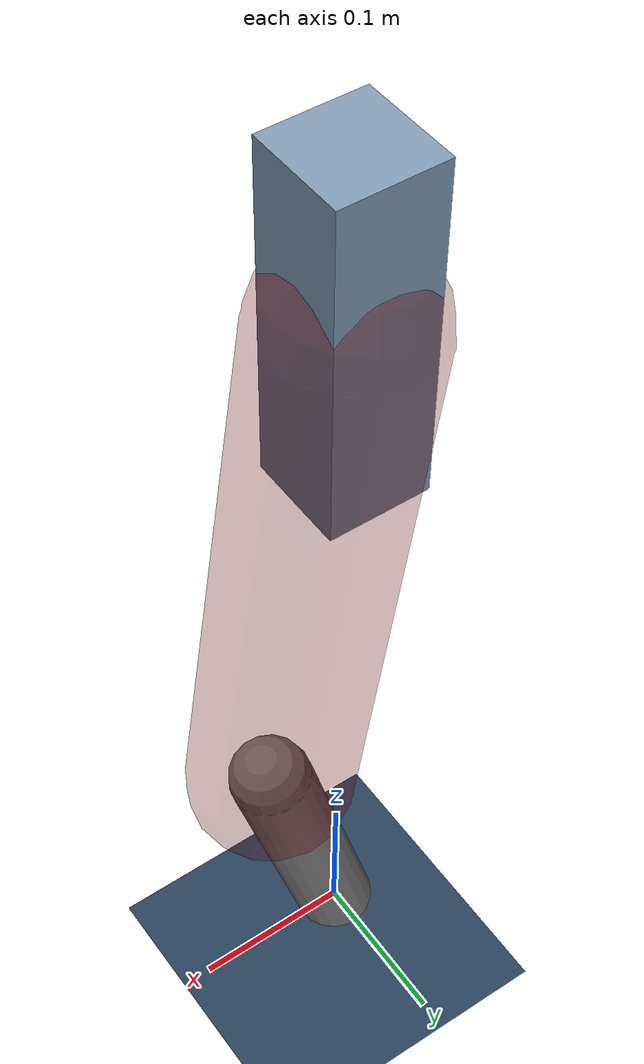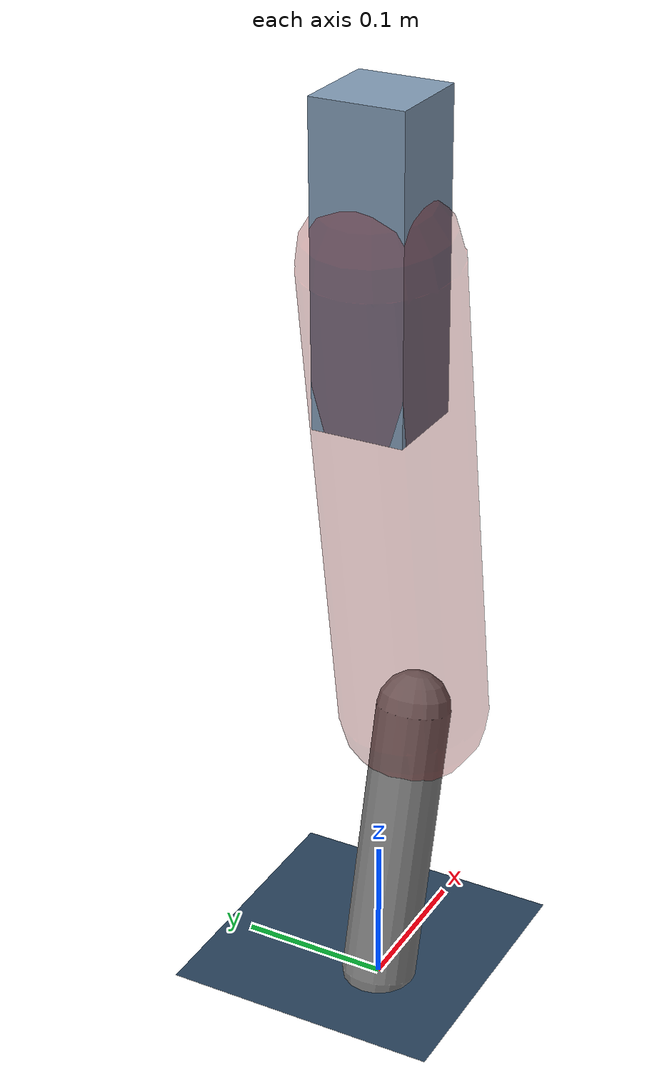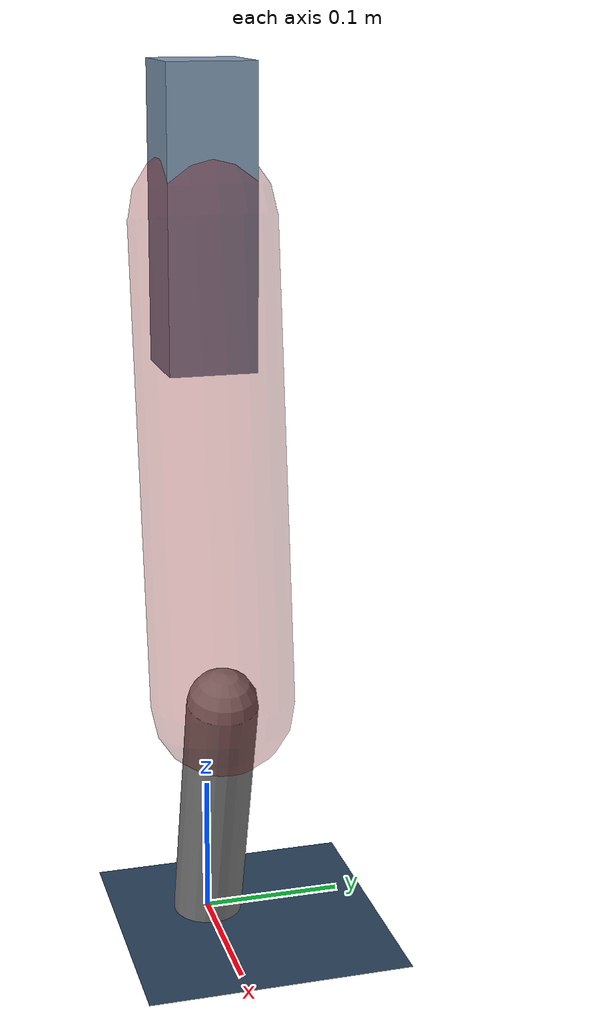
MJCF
<mujoco model="Hopper2D">
	<compiler inertiafromgeom="true" angle="radian" />
	<option timestep="0.001" integrator="implicit" cone="elliptic" solver="Newton" tolerance="1e-10" />

	<default>
		<geom contype="1" conaffinity="1" condim="3" friction="2 0.005 0.0001" solref="0.005 1" />
		<joint limited="true" damping="0.1" />
	</default>

	<asset>
		<texture name="skybox" type="skybox" builtin="gradient" rgb1=".4 .6 .8" rgb2="0 0 0" width="800" height="800" />
		<texture name="grid" type="2d" builtin="checker" rgb1=".1 .2 .3" rgb2=".2 .3 .4" width="300" height="300" mark="edge" markrgb=".2 .3 .4" />
		<material name="ground" texture="grid" texrepeat="1 1" texuniform="true" reflectance="0.1" />
		<material name="leg" rgba="0.5 0.6 0.7 1" />
	</asset>

	<worldbody>

		<geom name="floor" type="plane" size="5 5 0.25" material="ground" />

		<light directional="false" diffuse="0.8 0.8 0.8" specular="0.3 0.3 0.3" pos="0 0 2" dir="0 0 -1" />
		<light mode="targetbodycom" target="base" directional="false" diffuse="0.8 0.8 0.8" specular="0.3 0.3 0.3" pos="0 0 2" dir="0 0 -1" />

		<camera name="fixed" pos="0 -2 1" xyaxes="1 0 0 0 0 1" />
		<camera name="tracking" mode="trackcom" pos="0 -3 1" />

		<body name="root" pos="0 0 0.5113272454739122">
			<joint name="slide_x" type="slide" axis="1 0 0" range="-100 100" />
			<joint name="slide_z" type="slide" axis="0 0 1" range="0 10" />

			<body name="base" pos="0 0 0">
				<geom name="torso" type="box" size="0.03 0.03 0.1" mass="2.4290000000000003" material="leg" />

				<body name="link1" pos="0 0 0" euler="0 1.4225799816314806 0">
					<joint type="hinge" axis="0 -1 0" pos="0 0 0" name="hinge1" limited="true" range="-3.14 3.14" stiffness="0" damping="0.1" />
					<geom name="thigh" type="capsule" fromto="0 0 0 0.33084823689954057 0 0" size="0.05" rgba="0.5 0 0 0.3" mass="1.0731750633187136" />

					<body name="link2" pos="0.33084823689954057 0 0" euler="0 0.40761513946040545 0">
						<joint type="hinge" axis="0 -1 0" pos="0 0 0" name="hinge2" limited="true" range="-3.14 3.14" stiffness="0" damping="0.1" />
						<geom name="shank" type="capsule" fromto="0 0 0 0.19047900857437167 0 0" size="0.025" mass="0.3928311077169345" />

					</body>
				</body>
			</body>
		</body>
	</worldbody>

	<actuator>
		<motor name="torque1" joint="hinge1" ctrlrange="-65.4572226558004 65.4572226558004" ctrllimited="true" gear="1" />
		<motor name="torque2" joint="hinge2" ctrlrange="-101.50569648372678 101.50569648372678" ctrllimited="true" gear="1" />
	</actuator>
</mujoco>
